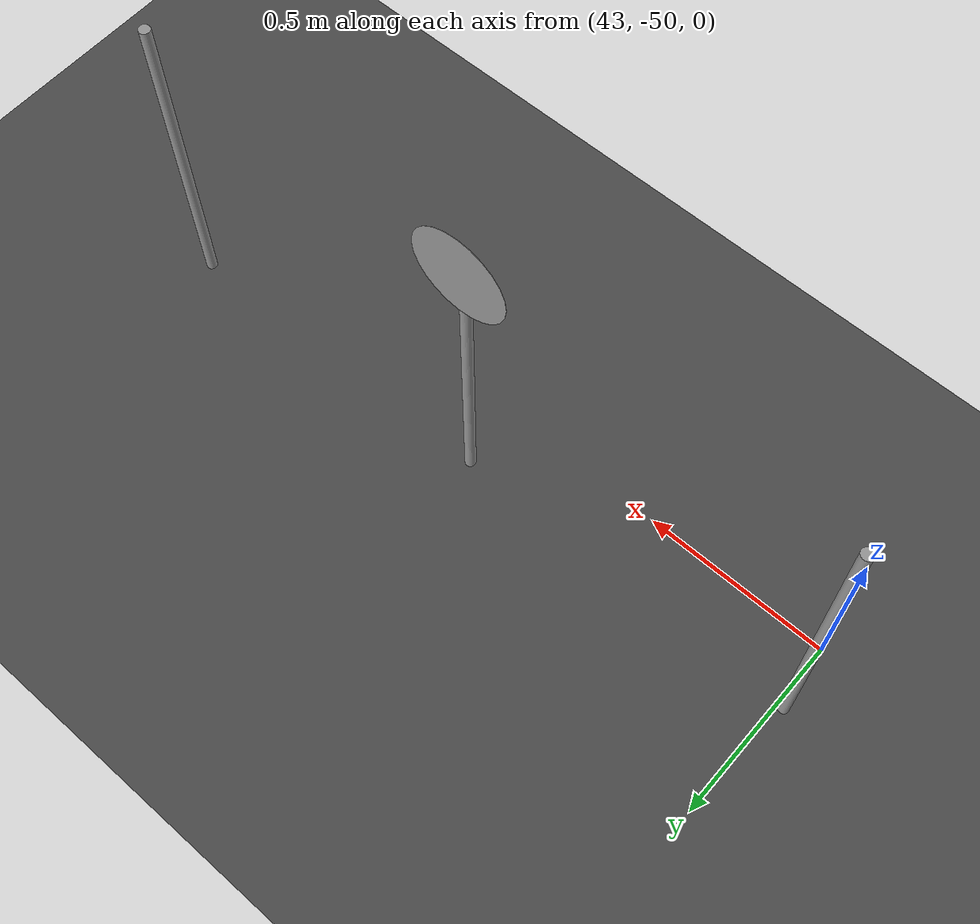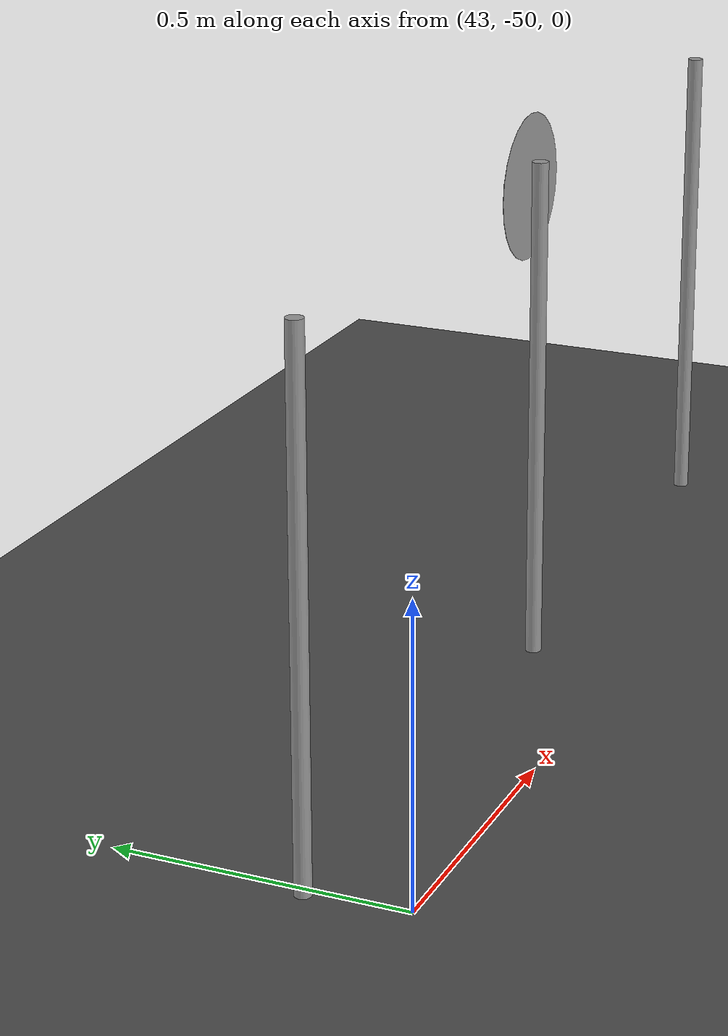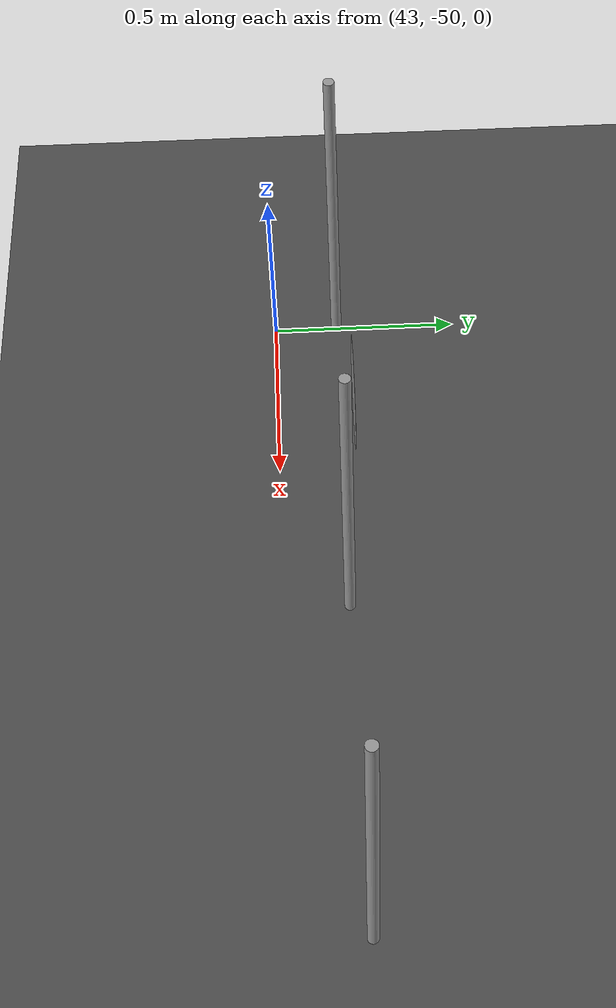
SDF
<sdf version="1.7">
 <world name="default">
  <model name="ground_plane">
   <static>1</static>
   <link name="link">
    <collision name="collision">
     <geometry><plane><normal>0 0 1</normal><size>100 100</size></plane></geometry>
     <surface>
      <contact><collide_bitmask>65535</collide_bitmask></contact>
      <friction><ode><mu>100</mu><mu2>50</mu2></ode></friction>
     </surface>
    </collision>
    <visual name="visual">
     <cast_shadows>0</cast_shadows>
     <geometry><plane><normal>0 0 1</normal><size>100 100</size></plane></geometry>
     <material>
      <script><uri>file://media/materials/scripts/gazebo.material</uri><name>Gazebo/DarkGrey</name></script>
     </material>
    </visual>
   </link>
  </model>
  <model name="unit_cylinder_clone_clone_0_clone_1_clone">
   <pose>42.9844 -49.8295 0.449205 0.001453 2e-06 -0.000107</pose>
   <link name="link">
    <inertial>
     <mass>1</mass>
     <inertia><ixx>0.145833</ixx><ixy>0</ixy><ixz>0</ixz><iyy>0.145833</iyy><iyz>0</iyz><izz>0.125</izz></inertia>
    </inertial>
    <collision name="collision">
     <geometry><cylinder><radius>0.0142338</radius><length>0.898369</length></cylinder></geometry>
    </collision>
    <visual name="visual">
     <geometry><cylinder><radius>0.0142338</radius><length>0.898369</length></cylinder></geometry>
     <material>
      <script><name>Gazebo/Grey</name><uri>file://media/materials/scripts/gazebo.material</uri></script>
     </material>
    </visual>
   </link>
  </model>
  <model name="unit_cylinder_clone_clone_0_clone_1_clone_clone">
   <pose>43.9402 -49.8303 0.449185 1e-05 1.6e-05 -8.2e-05</pose>
   <link name="link">
    <inertial>
     <mass>1</mass>
     <inertia><ixx>0.145833</ixx><ixy>0</ixy><ixz>0</ixz><iyy>0.145833</iyy><iyz>0</iyz><izz>0.125</izz></inertia>
    </inertial>
    <collision name="collision">
     <geometry><cylinder><radius>0.0142338</radius><length>0.898369</length></cylinder></geometry>
    </collision>
    <visual name="visual">
     <geometry><cylinder><radius>0.0142338</radius><length>0.898369</length></cylinder></geometry>
     <material>
      <script><name>Gazebo/Grey</name><uri>file://media/materials/scripts/gazebo.material</uri></script>
     </material>
    </visual>
   </link>
  </model>
  <model name="unit_cylinder_clone_clone_0_clone_1_clone_clone_clone">
   <pose>44.8392 -49.8172 0.449184 -5e-06 2.3e-05 -0.00042</pose>
   <link name="link">
    <inertial>
     <mass>1</mass>
     <inertia><ixx>0.145833</ixx><ixy>0</ixy><ixz>0</ixz><iyy>0.145833</iyy><iyz>0</iyz><izz>0.125</izz></inertia>
    </inertial>
    <collision name="collision">
     <geometry><cylinder><radius>0.0142338</radius><length>0.898369</length></cylinder></geometry>
    </collision>
    <visual name="visual">
     <geometry><cylinder><radius>0.0142338</radius><length>0.898369</length></cylinder></geometry>
     <material>
      <script><name>Gazebo/Grey</name><uri>file://media/materials/scripts/gazebo.material</uri></script>
     </material>
    </visual>
   </link>
  </model>
  <model name="parkyasak_clone_clone_0_clone_clone_0">
   <link name="link">
    <inertial>
     <mass>0.521459</mass>
     <inertia>
      <ixx>0.0434554</ixx>
      <ixy>0</ixy>
      <ixz>0</ixz>
      <iyy>0.0869098</iyy>
      <iyz>0</iyz>
      <izz>0.0434554</izz>
     </inertia>
    </inertial>
    <enable_wind>1</enable_wind>
    <gravity>0</gravity>
    <visual name="visual">
     <geometry><box><size>0.25 0.000107 0.25</size></box></geometry>
     <material>
      <script>
       <uri>model://parkyasak/materials/scripts/parkyasak.material</uri>
       <uri>model://parkyasak/materials/textures/parkyasak.png</uri>
       <name>RepeatedTexture13</name>
      </script>
      <shader type="pixel"><normal_map>__default__</normal_map></shader>
      <ambient>0 0 0 1</ambient>
      <diffuse>0.7 0.7 0.7 1</diffuse>
      <specular>0.01 0.01 0.01 1</specular>
      <emissive>0 0 0 1</emissive>
      <lighting>0</lighting>
     </material>
     <transparency>1</transparency>
    </visual>
    <collision name="collision">
     <geometry><box><size>0.25 0.000107 0.25</size></box></geometry>
     <surface>
      <friction>
       <ode><mu>1</mu><mu2>1</mu2><fdir1>0 0 0</fdir1><slip1>0</slip1><slip2>0</slip2></ode>
       <torsional>
        <coefficient>1</coefficient>
        <patch_radius>0</patch_radius>
        <surface_radius>0</surface_radius>
        <use_patch_radius>1</use_patch_radius>
        <ode><slip>0</slip></ode>
       </torsional>
      </friction>
      <bounce><restitution_coefficient>0</restitution_coefficient><threshold>1e+06</threshold></bounce>
      <contact>
       <collide_without_contact>0</collide_without_contact>
       <collide_without_contact_bitmask>1</collide_without_contact_bitmask>
       <collide_bitmask>1</collide_bitmask>
       <ode>
        <soft_cfm>0</soft_cfm>
        <soft_erp>0.2</soft_erp>
        <kp>1e+13</kp>
        <kd>1</kd>
        <max_vel>0.01</max_vel>
        <min_depth>0</min_depth>
       </ode>
       <bullet>
        <split_impulse>1</split_impulse>
        <split_impulse_penetration_threshold>-0.01</split_impulse_penetration_threshold>
        <soft_cfm>0</soft_cfm>
        <soft_erp>0.2</soft_erp>
        <kp>1e+13</kp>
        <kd>1</kd>
       </bullet>
      </contact>
     </surface>
    </collision>
   </link>
   <static>1</static>
   <pose>43.9404 -49.8089 0.851932 0 -0 0</pose>
  </model>
  <model name="circle_clone_clone">
   <link name="link">
    <inertial>
     <mass>1</mass>
     <inertia><ixx>0.145833</ixx><ixy>0</ixy><ixz>0</ixz><iyy>0.145833</iyy><iyz>0</iyz><izz>0.125</izz></inertia>
    </inertial>
    <visual name="visual">
     <geometry><cylinder><radius>0.126069</radius><length>0.000448721</length></cylinder></geometry>
     <material>
      <script><name>Gazebo/Grey</name><uri>file://media/materials/scripts/gazebo.material</uri></script>
      <shader type="pixel"/>
     </material>
    </visual>
    <collision name="collision">
     <geometry><cylinder><radius>0.126069</radius><length>0.000449</length></cylinder></geometry>
     <surface>
      <friction>
       <ode><mu>1</mu><mu2>1</mu2><fdir1>0 0 0</fdir1><slip1>0</slip1><slip2>0</slip2></ode>
       <torsional>
        <coefficient>1</coefficient>
        <patch_radius>0</patch_radius>
        <surface_radius>0</surface_radius>
        <use_patch_radius>1</use_patch_radius>
        <ode><slip>0</slip></ode>
       </torsional>
      </friction>
      <bounce><restitution_coefficient>0</restitution_coefficient><threshold>1e+06</threshold></bounce>
      <contact>
       <collide_without_contact>0</collide_without_contact>
       <collide_without_contact_bitmask>1</collide_without_contact_bitmask>
       <collide_bitmask>1</collide_bitmask>
       <ode>
        <soft_cfm>0</soft_cfm>
        <soft_erp>0.2</soft_erp>
        <kp>1e+13</kp>
        <kd>1</kd>
        <max_vel>0.01</max_vel>
        <min_depth>0</min_depth>
       </ode>
       <bullet>
        <split_impulse>1</split_impulse>
        <split_impulse_penetration_threshold>-0.01</split_impulse_penetration_threshold>
        <soft_cfm>0</soft_cfm>
        <soft_erp>0.2</soft_erp>
        <kp>1e+13</kp>
        <kd>1</kd>
       </bullet>
      </contact>
     </surface>
    </collision>
   </link>
   <static>1</static>
   <pose>43.9414 -49.8119 0.85285 1.5708 -0 0</pose>
  </model>
 </world>
</sdf>
